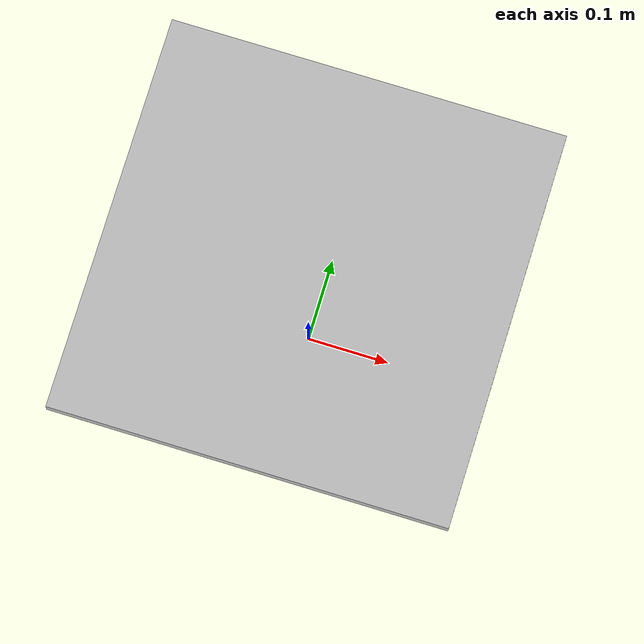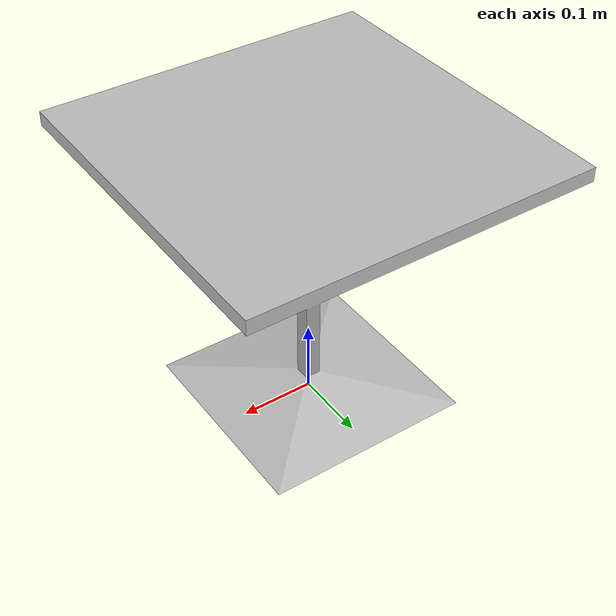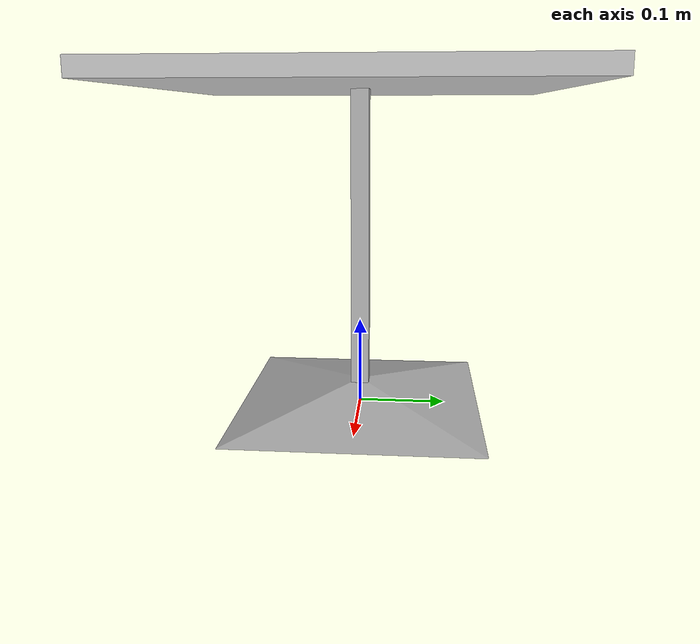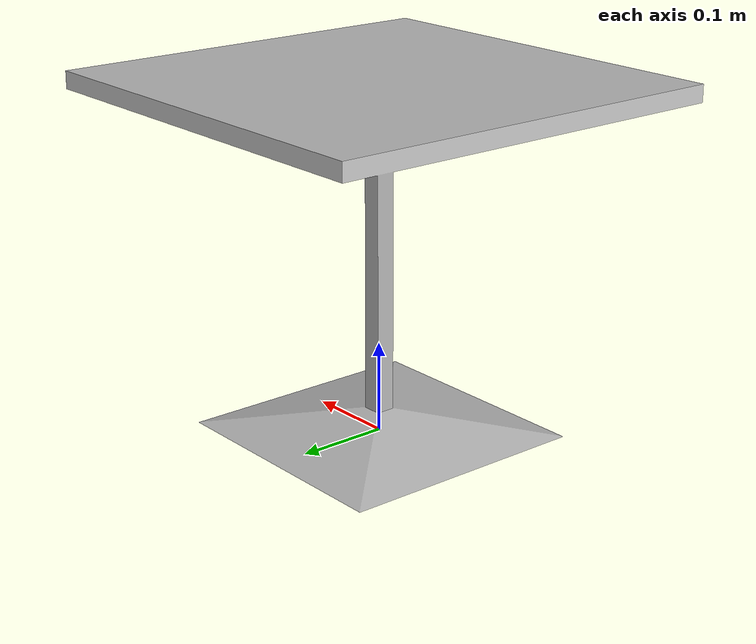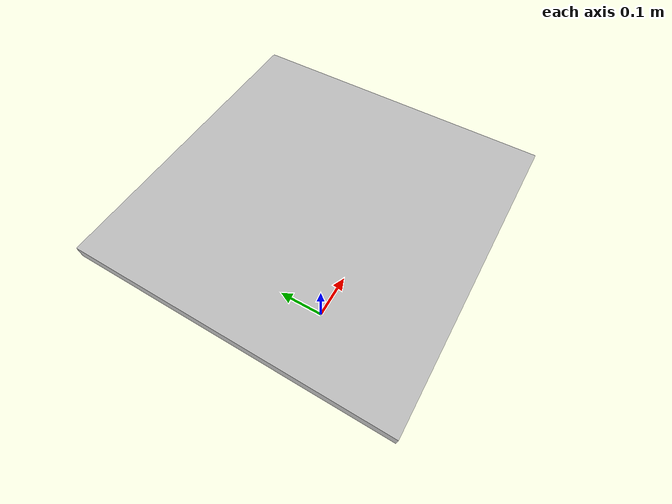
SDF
<?xml version="1.0" ?>
<sdf version="1.5">
  <model name="small_cafe_table">
    <static>true</static>
    <link name="link">

      <collision name="base">
        <pose>0 0 0 0 0 0</pose>
        <geometry>
          <mesh>
            <uri>model://cafe_table/meshes/cafe_table.dae</uri>
            <scale>0.5 0.5 0.5</scale>
          </mesh>
        </geometry>
      </collision>

      <visual name="visual">
        <geometry>
          <mesh>
            <uri>model://cafe_table/meshes/cafe_table.dae</uri>
            <scale>0.5 0.5 0.5</scale>
          </mesh>
        </geometry>
      </visual>
    </link>
  </model>
</sdf>
